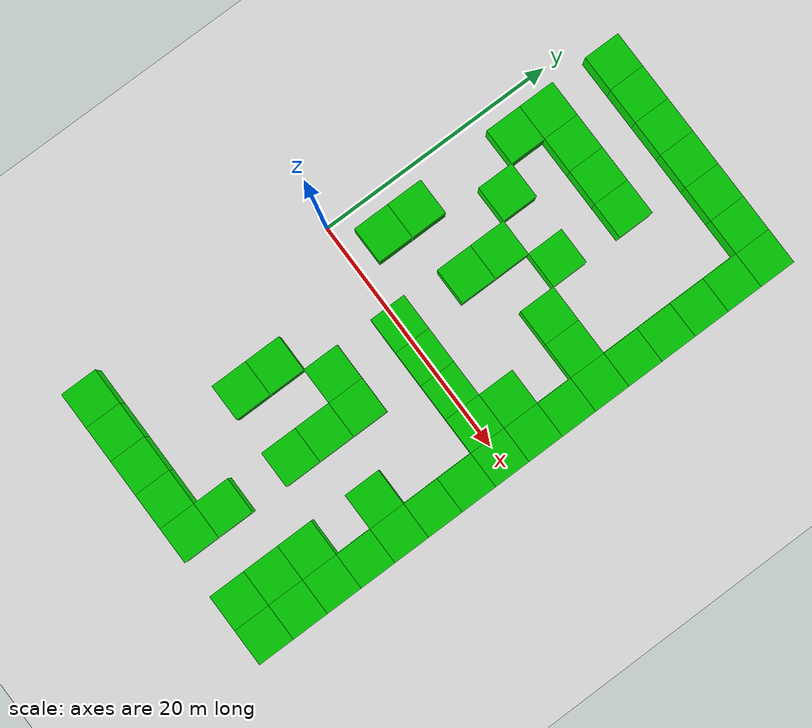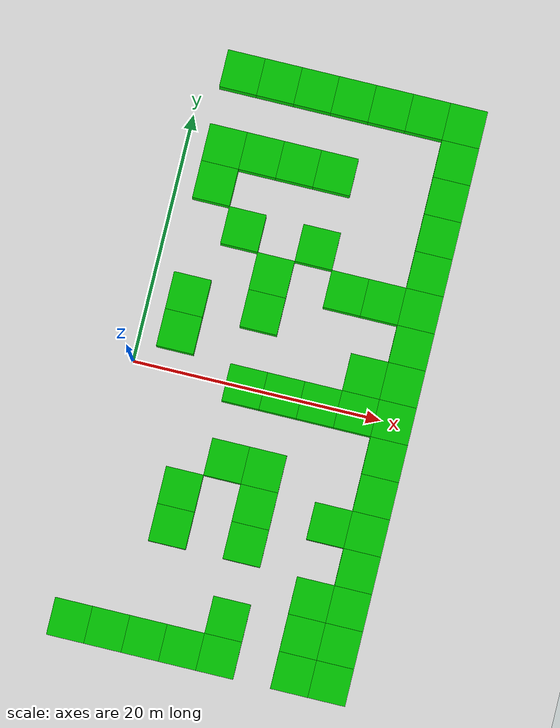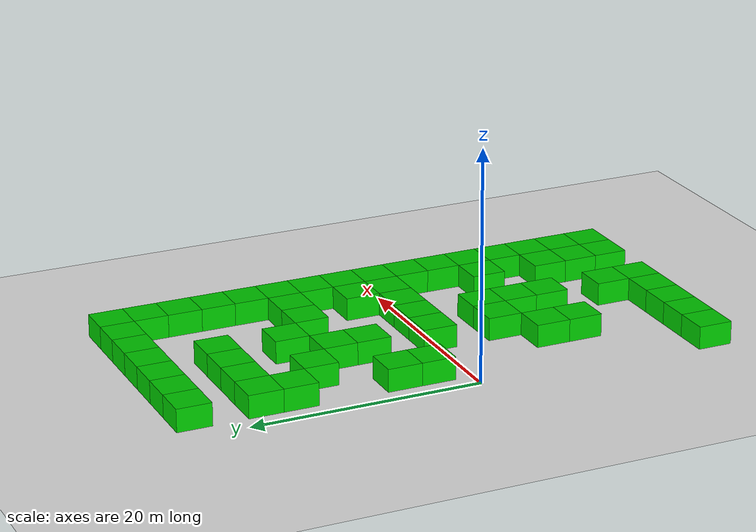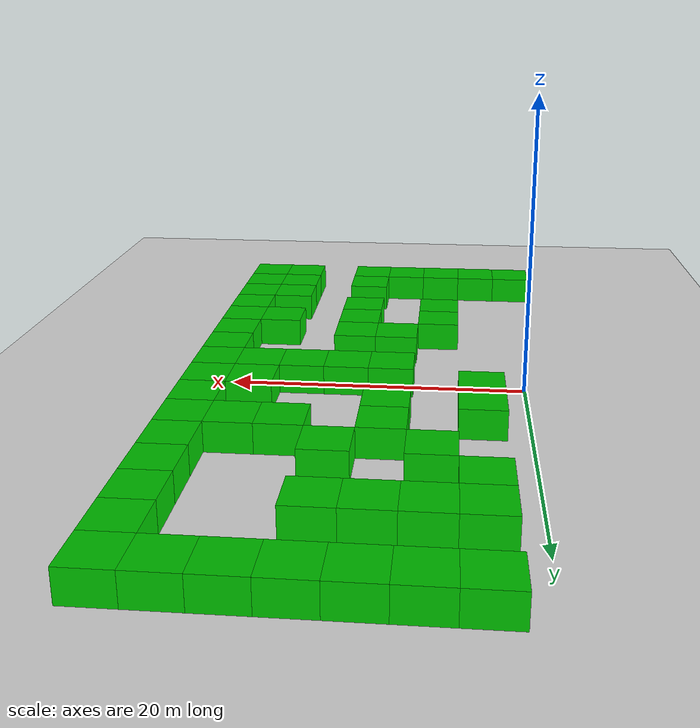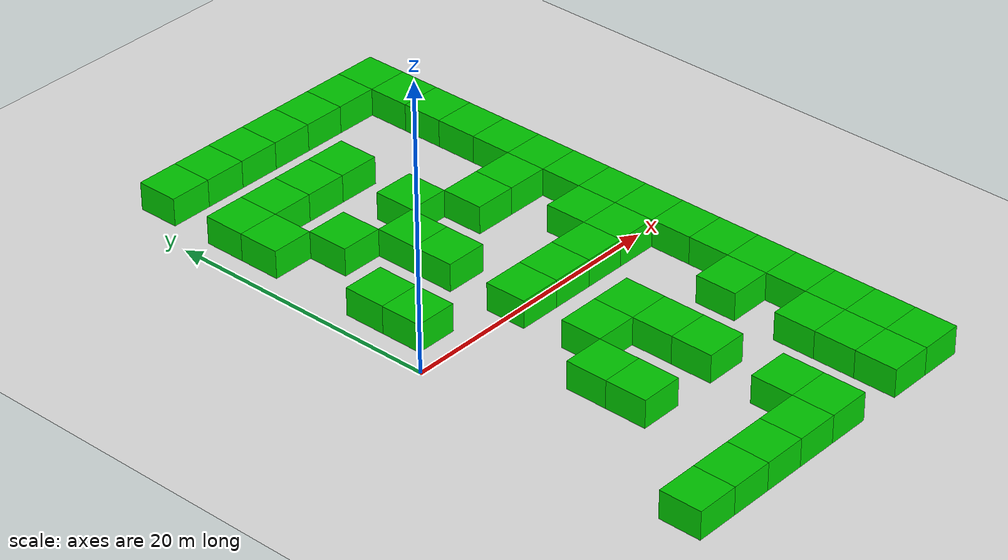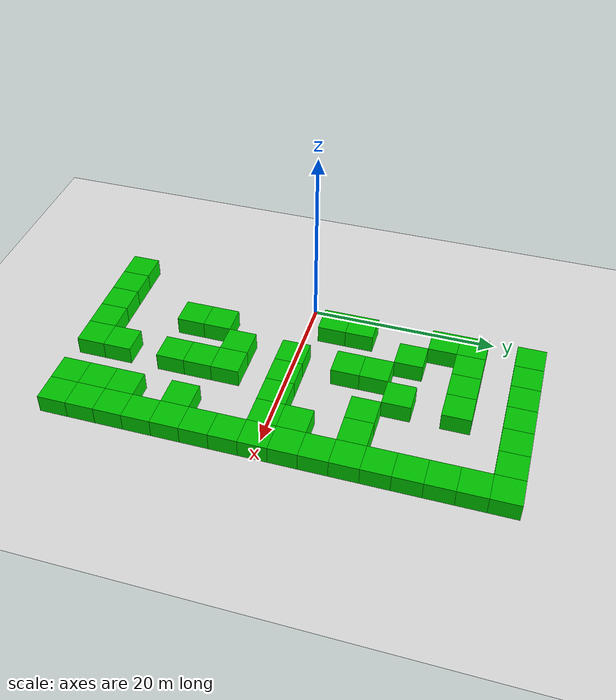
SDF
<sdf version="1.6">
 <world name="generated_maze">
  <model name="ground_plane">
   <static>true</static>
   <link name="link">
    <collision name="collision">
     <geometry><plane><normal>0 0 1</normal><size>300 300</size></plane></geometry>
    </collision>
    <visual name="visual">
     <geometry><plane><normal>0 0 1</normal><size>300 300</size></plane></geometry>
     <material>
      <ambient>0.9 0.9 0.9 1</ambient>
      <diffuse>0.9 0.9 0.9 1</diffuse>
      <specular>0.3 0.3 0.3 1</specular>
     </material>
    </visual>
   </link>
  </model>
  <model name="wall_0_9">
   <static>true</static>
   <pose>3.0 24.0 1.00 0 0 0</pose>
   <link name="link">
    <collision name="collision"><geometry><box><size>3.0 3.0 2.0</size></box></geometry></collision>
    <visual name="visual">
     <geometry><box><size>3.0 3.0 2.0</size></box></geometry>
     <material>
      <ambient>0.0 0.8 0.0 1</ambient>
      <diffuse>0.0 0.8 0.0 1</diffuse>
      <specular>0.1 0.1 0.1 1</specular>
     </material>
    </visual>
   </link>
  </model>
  <model name="wall_0_10">
   <static>true</static>
   <pose>6.0 24.0 1.00 0 0 0</pose>
   <link name="link">
    <collision name="collision"><geometry><box><size>3.0 3.0 2.0</size></box></geometry></collision>
    <visual name="visual">
     <geometry><box><size>3.0 3.0 2.0</size></box></geometry>
     <material>
      <ambient>0.0 0.8 0.0 1</ambient>
      <diffuse>0.0 0.8 0.0 1</diffuse>
      <specular>0.1 0.1 0.1 1</specular>
     </material>
    </visual>
   </link>
  </model>
  <model name="wall_0_11">
   <static>true</static>
   <pose>9.0 24.0 1.00 0 0 0</pose>
   <link name="link">
    <collision name="collision"><geometry><box><size>3.0 3.0 2.0</size></box></geometry></collision>
    <visual name="visual">
     <geometry><box><size>3.0 3.0 2.0</size></box></geometry>
     <material>
      <ambient>0.0 0.8 0.0 1</ambient>
      <diffuse>0.0 0.8 0.0 1</diffuse>
      <specular>0.1 0.1 0.1 1</specular>
     </material>
    </visual>
   </link>
  </model>
  <model name="wall_0_12">
   <static>true</static>
   <pose>12.0 24.0 1.00 0 0 0</pose>
   <link name="link">
    <collision name="collision"><geometry><box><size>3.0 3.0 2.0</size></box></geometry></collision>
    <visual name="visual">
     <geometry><box><size>3.0 3.0 2.0</size></box></geometry>
     <material>
      <ambient>0.0 0.8 0.0 1</ambient>
      <diffuse>0.0 0.8 0.0 1</diffuse>
      <specular>0.1 0.1 0.1 1</specular>
     </material>
    </visual>
   </link>
  </model>
  <model name="wall_0_13">
   <static>true</static>
   <pose>15.0 24.0 1.00 0 0 0</pose>
   <link name="link">
    <collision name="collision"><geometry><box><size>3.0 3.0 2.0</size></box></geometry></collision>
    <visual name="visual">
     <geometry><box><size>3.0 3.0 2.0</size></box></geometry>
     <material>
      <ambient>0.0 0.8 0.0 1</ambient>
      <diffuse>0.0 0.8 0.0 1</diffuse>
      <specular>0.1 0.1 0.1 1</specular>
     </material>
    </visual>
   </link>
  </model>
  <model name="wall_0_14">
   <static>true</static>
   <pose>18.0 24.0 1.00 0 0 0</pose>
   <link name="link">
    <collision name="collision"><geometry><box><size>3.0 3.0 2.0</size></box></geometry></collision>
    <visual name="visual">
     <geometry><box><size>3.0 3.0 2.0</size></box></geometry>
     <material>
      <ambient>0.0 0.8 0.0 1</ambient>
      <diffuse>0.0 0.8 0.0 1</diffuse>
      <specular>0.1 0.1 0.1 1</specular>
     </material>
    </visual>
   </link>
  </model>
  <model name="wall_0_15">
   <static>true</static>
   <pose>21.0 24.0 1.00 0 0 0</pose>
   <link name="link">
    <collision name="collision"><geometry><box><size>3.0 3.0 2.0</size></box></geometry></collision>
    <visual name="visual">
     <geometry><box><size>3.0 3.0 2.0</size></box></geometry>
     <material>
      <ambient>0.0 0.8 0.0 1</ambient>
      <diffuse>0.0 0.8 0.0 1</diffuse>
      <specular>0.1 0.1 0.1 1</specular>
     </material>
    </visual>
   </link>
  </model>
  <model name="wall_1_15">
   <static>true</static>
   <pose>21.0 21.0 1.00 0 0 0</pose>
   <link name="link">
    <collision name="collision"><geometry><box><size>3.0 3.0 2.0</size></box></geometry></collision>
    <visual name="visual">
     <geometry><box><size>3.0 3.0 2.0</size></box></geometry>
     <material>
      <ambient>0.0 0.8 0.0 1</ambient>
      <diffuse>0.0 0.8 0.0 1</diffuse>
      <specular>0.1 0.1 0.1 1</specular>
     </material>
    </visual>
   </link>
  </model>
  <model name="wall_2_9">
   <static>true</static>
   <pose>3.0 18.0 1.00 0 0 0</pose>
   <link name="link">
    <collision name="collision"><geometry><box><size>3.0 3.0 2.0</size></box></geometry></collision>
    <visual name="visual">
     <geometry><box><size>3.0 3.0 2.0</size></box></geometry>
     <material>
      <ambient>0.0 0.8 0.0 1</ambient>
      <diffuse>0.0 0.8 0.0 1</diffuse>
      <specular>0.1 0.1 0.1 1</specular>
     </material>
    </visual>
   </link>
  </model>
  <model name="wall_2_10">
   <static>true</static>
   <pose>6.0 18.0 1.00 0 0 0</pose>
   <link name="link">
    <collision name="collision"><geometry><box><size>3.0 3.0 2.0</size></box></geometry></collision>
    <visual name="visual">
     <geometry><box><size>3.0 3.0 2.0</size></box></geometry>
     <material>
      <ambient>0.0 0.8 0.0 1</ambient>
      <diffuse>0.0 0.8 0.0 1</diffuse>
      <specular>0.1 0.1 0.1 1</specular>
     </material>
    </visual>
   </link>
  </model>
  <model name="wall_2_11">
   <static>true</static>
   <pose>9.0 18.0 1.00 0 0 0</pose>
   <link name="link">
    <collision name="collision"><geometry><box><size>3.0 3.0 2.0</size></box></geometry></collision>
    <visual name="visual">
     <geometry><box><size>3.0 3.0 2.0</size></box></geometry>
     <material>
      <ambient>0.0 0.8 0.0 1</ambient>
      <diffuse>0.0 0.8 0.0 1</diffuse>
      <specular>0.1 0.1 0.1 1</specular>
     </material>
    </visual>
   </link>
  </model>
  <model name="wall_2_12">
   <static>true</static>
   <pose>12.0 18.0 1.00 0 0 0</pose>
   <link name="link">
    <collision name="collision"><geometry><box><size>3.0 3.0 2.0</size></box></geometry></collision>
    <visual name="visual">
     <geometry><box><size>3.0 3.0 2.0</size></box></geometry>
     <material>
      <ambient>0.0 0.8 0.0 1</ambient>
      <diffuse>0.0 0.8 0.0 1</diffuse>
      <specular>0.1 0.1 0.1 1</specular>
     </material>
    </visual>
   </link>
  </model>
  <model name="wall_2_15">
   <static>true</static>
   <pose>21.0 18.0 1.00 0 0 0</pose>
   <link name="link">
    <collision name="collision"><geometry><box><size>3.0 3.0 2.0</size></box></geometry></collision>
    <visual name="visual">
     <geometry><box><size>3.0 3.0 2.0</size></box></geometry>
     <material>
      <ambient>0.0 0.8 0.0 1</ambient>
      <diffuse>0.0 0.8 0.0 1</diffuse>
      <specular>0.1 0.1 0.1 1</specular>
     </material>
    </visual>
   </link>
  </model>
  <model name="wall_3_9">
   <static>true</static>
   <pose>3.0 15.0 1.00 0 0 0</pose>
   <link name="link">
    <collision name="collision"><geometry><box><size>3.0 3.0 2.0</size></box></geometry></collision>
    <visual name="visual">
     <geometry><box><size>3.0 3.0 2.0</size></box></geometry>
     <material>
      <ambient>0.0 0.8 0.0 1</ambient>
      <diffuse>0.0 0.8 0.0 1</diffuse>
      <specular>0.1 0.1 0.1 1</specular>
     </material>
    </visual>
   </link>
  </model>
  <model name="wall_3_15">
   <static>true</static>
   <pose>21.0 15.0 1.00 0 0 0</pose>
   <link name="link">
    <collision name="collision"><geometry><box><size>3.0 3.0 2.0</size></box></geometry></collision>
    <visual name="visual">
     <geometry><box><size>3.0 3.0 2.0</size></box></geometry>
     <material>
      <ambient>0.0 0.8 0.0 1</ambient>
      <diffuse>0.0 0.8 0.0 1</diffuse>
      <specular>0.1 0.1 0.1 1</specular>
     </material>
    </visual>
   </link>
  </model>
  <model name="wall_4_10">
   <static>true</static>
   <pose>6.0 12.0 1.00 0 0 0</pose>
   <link name="link">
    <collision name="collision"><geometry><box><size>3.0 3.0 2.0</size></box></geometry></collision>
    <visual name="visual">
     <geometry><box><size>3.0 3.0 2.0</size></box></geometry>
     <material>
      <ambient>0.0 0.8 0.0 1</ambient>
      <diffuse>0.0 0.8 0.0 1</diffuse>
      <specular>0.1 0.1 0.1 1</specular>
     </material>
    </visual>
   </link>
  </model>
  <model name="wall_4_12">
   <static>true</static>
   <pose>12.0 12.0 1.00 0 0 0</pose>
   <link name="link">
    <collision name="collision"><geometry><box><size>3.0 3.0 2.0</size></box></geometry></collision>
    <visual name="visual">
     <geometry><box><size>3.0 3.0 2.0</size></box></geometry>
     <material>
      <ambient>0.0 0.8 0.0 1</ambient>
      <diffuse>0.0 0.8 0.0 1</diffuse>
      <specular>0.1 0.1 0.1 1</specular>
     </material>
    </visual>
   </link>
  </model>
  <model name="wall_4_15">
   <static>true</static>
   <pose>21.0 12.0 1.00 0 0 0</pose>
   <link name="link">
    <collision name="collision"><geometry><box><size>3.0 3.0 2.0</size></box></geometry></collision>
    <visual name="visual">
     <geometry><box><size>3.0 3.0 2.0</size></box></geometry>
     <material>
      <ambient>0.0 0.8 0.0 1</ambient>
      <diffuse>0.0 0.8 0.0 1</diffuse>
      <specular>0.1 0.1 0.1 1</specular>
     </material>
    </visual>
   </link>
  </model>
  <model name="wall_5_11">
   <static>true</static>
   <pose>9.0 9.0 1.00 0 0 0</pose>
   <link name="link">
    <collision name="collision"><geometry><box><size>3.0 3.0 2.0</size></box></geometry></collision>
    <visual name="visual">
     <geometry><box><size>3.0 3.0 2.0</size></box></geometry>
     <material>
      <ambient>0.0 0.8 0.0 1</ambient>
      <diffuse>0.0 0.8 0.0 1</diffuse>
      <specular>0.1 0.1 0.1 1</specular>
     </material>
    </visual>
   </link>
  </model>
  <model name="wall_5_13">
   <static>true</static>
   <pose>15.0 9.0 1.00 0 0 0</pose>
   <link name="link">
    <collision name="collision"><geometry><box><size>3.0 3.0 2.0</size></box></geometry></collision>
    <visual name="visual">
     <geometry><box><size>3.0 3.0 2.0</size></box></geometry>
     <material>
      <ambient>0.0 0.8 0.0 1</ambient>
      <diffuse>0.0 0.8 0.0 1</diffuse>
      <specular>0.1 0.1 0.1 1</specular>
     </material>
    </visual>
   </link>
  </model>
  <model name="wall_5_14">
   <static>true</static>
   <pose>18.0 9.0 1.00 0 0 0</pose>
   <link name="link">
    <collision name="collision"><geometry><box><size>3.0 3.0 2.0</size></box></geometry></collision>
    <visual name="visual">
     <geometry><box><size>3.0 3.0 2.0</size></box></geometry>
     <material>
      <ambient>0.0 0.8 0.0 1</ambient>
      <diffuse>0.0 0.8 0.0 1</diffuse>
      <specular>0.1 0.1 0.1 1</specular>
     </material>
    </visual>
   </link>
  </model>
  <model name="wall_5_15">
   <static>true</static>
   <pose>21.0 9.0 1.00 0 0 0</pose>
   <link name="link">
    <collision name="collision"><geometry><box><size>3.0 3.0 2.0</size></box></geometry></collision>
    <visual name="visual">
     <geometry><box><size>3.0 3.0 2.0</size></box></geometry>
     <material>
      <ambient>0.0 0.8 0.0 1</ambient>
      <diffuse>0.0 0.8 0.0 1</diffuse>
      <specular>0.1 0.1 0.1 1</specular>
     </material>
    </visual>
   </link>
  </model>
  <model name="wall_6_9">
   <static>true</static>
   <pose>3.0 6.0 1.00 0 0 0</pose>
   <link name="link">
    <collision name="collision"><geometry><box><size>3.0 3.0 2.0</size></box></geometry></collision>
    <visual name="visual">
     <geometry><box><size>3.0 3.0 2.0</size></box></geometry>
     <material>
      <ambient>0.0 0.8 0.0 1</ambient>
      <diffuse>0.0 0.8 0.0 1</diffuse>
      <specular>0.1 0.1 0.1 1</specular>
     </material>
    </visual>
   </link>
  </model>
  <model name="wall_6_11">
   <static>true</static>
   <pose>9.0 6.0 1.00 0 0 0</pose>
   <link name="link">
    <collision name="collision"><geometry><box><size>3.0 3.0 2.0</size></box></geometry></collision>
    <visual name="visual">
     <geometry><box><size>3.0 3.0 2.0</size></box></geometry>
     <material>
      <ambient>0.0 0.8 0.0 1</ambient>
      <diffuse>0.0 0.8 0.0 1</diffuse>
      <specular>0.1 0.1 0.1 1</specular>
     </material>
    </visual>
   </link>
  </model>
  <model name="wall_6_15">
   <static>true</static>
   <pose>21.0 6.0 1.00 0 0 0</pose>
   <link name="link">
    <collision name="collision"><geometry><box><size>3.0 3.0 2.0</size></box></geometry></collision>
    <visual name="visual">
     <geometry><box><size>3.0 3.0 2.0</size></box></geometry>
     <material>
      <ambient>0.0 0.8 0.0 1</ambient>
      <diffuse>0.0 0.8 0.0 1</diffuse>
      <specular>0.1 0.1 0.1 1</specular>
     </material>
    </visual>
   </link>
  </model>
  <model name="wall_7_9">
   <static>true</static>
   <pose>3.0 3.0 1.00 0 0 0</pose>
   <link name="link">
    <collision name="collision"><geometry><box><size>3.0 3.0 2.0</size></box></geometry></collision>
    <visual name="visual">
     <geometry><box><size>3.0 3.0 2.0</size></box></geometry>
     <material>
      <ambient>0.0 0.8 0.0 1</ambient>
      <diffuse>0.0 0.8 0.0 1</diffuse>
      <specular>0.1 0.1 0.1 1</specular>
     </material>
    </visual>
   </link>
  </model>
  <model name="wall_7_14">
   <static>true</static>
   <pose>18.0 3.0 1.00 0 0 0</pose>
   <link name="link">
    <collision name="collision"><geometry><box><size>3.0 3.0 2.0</size></box></geometry></collision>
    <visual name="visual">
     <geometry><box><size>3.0 3.0 2.0</size></box></geometry>
     <material>
      <ambient>0.0 0.8 0.0 1</ambient>
      <diffuse>0.0 0.8 0.0 1</diffuse>
      <specular>0.1 0.1 0.1 1</specular>
     </material>
    </visual>
   </link>
  </model>
  <model name="wall_7_15">
   <static>true</static>
   <pose>21.0 3.0 1.00 0 0 0</pose>
   <link name="link">
    <collision name="collision"><geometry><box><size>3.0 3.0 2.0</size></box></geometry></collision>
    <visual name="visual">
     <geometry><box><size>3.0 3.0 2.0</size></box></geometry>
     <material>
      <ambient>0.0 0.8 0.0 1</ambient>
      <diffuse>0.0 0.8 0.0 1</diffuse>
      <specular>0.1 0.1 0.1 1</specular>
     </material>
    </visual>
   </link>
  </model>
  <model name="wall_8_11">
   <static>true</static>
   <pose>9.0 0.0 1.00 0 0 0</pose>
   <link name="link">
    <collision name="collision"><geometry><box><size>3.0 3.0 2.0</size></box></geometry></collision>
    <visual name="visual">
     <geometry><box><size>3.0 3.0 2.0</size></box></geometry>
     <material>
      <ambient>0.0 0.8 0.0 1</ambient>
      <diffuse>0.0 0.8 0.0 1</diffuse>
      <specular>0.1 0.1 0.1 1</specular>
     </material>
    </visual>
   </link>
  </model>
  <model name="wall_8_12">
   <static>true</static>
   <pose>12.0 0.0 1.00 0 0 0</pose>
   <link name="link">
    <collision name="collision"><geometry><box><size>3.0 3.0 2.0</size></box></geometry></collision>
    <visual name="visual">
     <geometry><box><size>3.0 3.0 2.0</size></box></geometry>
     <material>
      <ambient>0.0 0.8 0.0 1</ambient>
      <diffuse>0.0 0.8 0.0 1</diffuse>
      <specular>0.1 0.1 0.1 1</specular>
     </material>
    </visual>
   </link>
  </model>
  <model name="wall_8_13">
   <static>true</static>
   <pose>15.0 0.0 1.00 0 0 0</pose>
   <link name="link">
    <collision name="collision"><geometry><box><size>3.0 3.0 2.0</size></box></geometry></collision>
    <visual name="visual">
     <geometry><box><size>3.0 3.0 2.0</size></box></geometry>
     <material>
      <ambient>0.0 0.8 0.0 1</ambient>
      <diffuse>0.0 0.8 0.0 1</diffuse>
      <specular>0.1 0.1 0.1 1</specular>
     </material>
    </visual>
   </link>
  </model>
  <model name="wall_8_14">
   <static>true</static>
   <pose>18.0 0.0 1.00 0 0 0</pose>
   <link name="link">
    <collision name="collision"><geometry><box><size>3.0 3.0 2.0</size></box></geometry></collision>
    <visual name="visual">
     <geometry><box><size>3.0 3.0 2.0</size></box></geometry>
     <material>
      <ambient>0.0 0.8 0.0 1</ambient>
      <diffuse>0.0 0.8 0.0 1</diffuse>
      <specular>0.1 0.1 0.1 1</specular>
     </material>
    </visual>
   </link>
  </model>
  <model name="wall_8_15">
   <static>true</static>
   <pose>21.0 0.0 1.00 0 0 0</pose>
   <link name="link">
    <collision name="collision"><geometry><box><size>3.0 3.0 2.0</size></box></geometry></collision>
    <visual name="visual">
     <geometry><box><size>3.0 3.0 2.0</size></box></geometry>
     <material>
      <ambient>0.0 0.8 0.0 1</ambient>
      <diffuse>0.0 0.8 0.0 1</diffuse>
      <specular>0.1 0.1 0.1 1</specular>
     </material>
    </visual>
   </link>
  </model>
  <model name="wall_9_15">
   <static>true</static>
   <pose>21.0 -3.0 1.00 0 0 0</pose>
   <link name="link">
    <collision name="collision"><geometry><box><size>3.0 3.0 2.0</size></box></geometry></collision>
    <visual name="visual">
     <geometry><box><size>3.0 3.0 2.0</size></box></geometry>
     <material>
      <ambient>0.0 0.8 0.0 1</ambient>
      <diffuse>0.0 0.8 0.0 1</diffuse>
      <specular>0.1 0.1 0.1 1</specular>
     </material>
    </visual>
   </link>
  </model>
  <model name="wall_10_11">
   <static>true</static>
   <pose>9.0 -6.0 1.00 0 0 0</pose>
   <link name="link">
    <collision name="collision"><geometry><box><size>3.0 3.0 2.0</size></box></geometry></collision>
    <visual name="visual">
     <geometry><box><size>3.0 3.0 2.0</size></box></geometry>
     <material>
      <ambient>0.0 0.8 0.0 1</ambient>
      <diffuse>0.0 0.8 0.0 1</diffuse>
      <specular>0.1 0.1 0.1 1</specular>
     </material>
    </visual>
   </link>
  </model>
  <model name="wall_10_12">
   <static>true</static>
   <pose>12.0 -6.0 1.00 0 0 0</pose>
   <link name="link">
    <collision name="collision"><geometry><box><size>3.0 3.0 2.0</size></box></geometry></collision>
    <visual name="visual">
     <geometry><box><size>3.0 3.0 2.0</size></box></geometry>
     <material>
      <ambient>0.0 0.8 0.0 1</ambient>
      <diffuse>0.0 0.8 0.0 1</diffuse>
      <specular>0.1 0.1 0.1 1</specular>
     </material>
    </visual>
   </link>
  </model>
  <model name="wall_10_15">
   <static>true</static>
   <pose>21.0 -6.0 1.00 0 0 0</pose>
   <link name="link">
    <collision name="collision"><geometry><box><size>3.0 3.0 2.0</size></box></geometry></collision>
    <visual name="visual">
     <geometry><box><size>3.0 3.0 2.0</size></box></geometry>
     <material>
      <ambient>0.0 0.8 0.0 1</ambient>
      <diffuse>0.0 0.8 0.0 1</diffuse>
      <specular>0.1 0.1 0.1 1</specular>
     </material>
    </visual>
   </link>
  </model>
  <model name="wall_11_10">
   <static>true</static>
   <pose>6.0 -9.0 1.00 0 0 0</pose>
   <link name="link">
    <collision name="collision"><geometry><box><size>3.0 3.0 2.0</size></box></geometry></collision>
    <visual name="visual">
     <geometry><box><size>3.0 3.0 2.0</size></box></geometry>
     <material>
      <ambient>0.0 0.8 0.0 1</ambient>
      <diffuse>0.0 0.8 0.0 1</diffuse>
      <specular>0.1 0.1 0.1 1</specular>
     </material>
    </visual>
   </link>
  </model>
  <model name="wall_11_12">
   <static>true</static>
   <pose>12.0 -9.0 1.00 0 0 0</pose>
   <link name="link">
    <collision name="collision"><geometry><box><size>3.0 3.0 2.0</size></box></geometry></collision>
    <visual name="visual">
     <geometry><box><size>3.0 3.0 2.0</size></box></geometry>
     <material>
      <ambient>0.0 0.8 0.0 1</ambient>
      <diffuse>0.0 0.8 0.0 1</diffuse>
      <specular>0.1 0.1 0.1 1</specular>
     </material>
    </visual>
   </link>
  </model>
  <model name="wall_11_14">
   <static>true</static>
   <pose>18.0 -9.0 1.00 0 0 0</pose>
   <link name="link">
    <collision name="collision"><geometry><box><size>3.0 3.0 2.0</size></box></geometry></collision>
    <visual name="visual">
     <geometry><box><size>3.0 3.0 2.0</size></box></geometry>
     <material>
      <ambient>0.0 0.8 0.0 1</ambient>
      <diffuse>0.0 0.8 0.0 1</diffuse>
      <specular>0.1 0.1 0.1 1</specular>
     </material>
    </visual>
   </link>
  </model>
  <model name="wall_11_15">
   <static>true</static>
   <pose>21.0 -9.0 1.00 0 0 0</pose>
   <link name="link">
    <collision name="collision"><geometry><box><size>3.0 3.0 2.0</size></box></geometry></collision>
    <visual name="visual">
     <geometry><box><size>3.0 3.0 2.0</size></box></geometry>
     <material>
      <ambient>0.0 0.8 0.0 1</ambient>
      <diffuse>0.0 0.8 0.0 1</diffuse>
      <specular>0.1 0.1 0.1 1</specular>
     </material>
    </visual>
   </link>
  </model>
  <model name="wall_12_10">
   <static>true</static>
   <pose>6.0 -12.0 1.00 0 0 0</pose>
   <link name="link">
    <collision name="collision"><geometry><box><size>3.0 3.0 2.0</size></box></geometry></collision>
    <visual name="visual">
     <geometry><box><size>3.0 3.0 2.0</size></box></geometry>
     <material>
      <ambient>0.0 0.8 0.0 1</ambient>
      <diffuse>0.0 0.8 0.0 1</diffuse>
      <specular>0.1 0.1 0.1 1</specular>
     </material>
    </visual>
   </link>
  </model>
  <model name="wall_12_12">
   <static>true</static>
   <pose>12.0 -12.0 1.00 0 0 0</pose>
   <link name="link">
    <collision name="collision"><geometry><box><size>3.0 3.0 2.0</size></box></geometry></collision>
    <visual name="visual">
     <geometry><box><size>3.0 3.0 2.0</size></box></geometry>
     <material>
      <ambient>0.0 0.8 0.0 1</ambient>
      <diffuse>0.0 0.8 0.0 1</diffuse>
      <specular>0.1 0.1 0.1 1</specular>
     </material>
    </visual>
   </link>
  </model>
  <model name="wall_12_15">
   <static>true</static>
   <pose>21.0 -12.0 1.00 0 0 0</pose>
   <link name="link">
    <collision name="collision"><geometry><box><size>3.0 3.0 2.0</size></box></geometry></collision>
    <visual name="visual">
     <geometry><box><size>3.0 3.0 2.0</size></box></geometry>
     <material>
      <ambient>0.0 0.8 0.0 1</ambient>
      <diffuse>0.0 0.8 0.0 1</diffuse>
      <specular>0.1 0.1 0.1 1</specular>
     </material>
    </visual>
   </link>
  </model>
  <model name="wall_13_14">
   <static>true</static>
   <pose>18.0 -15.0 1.00 0 0 0</pose>
   <link name="link">
    <collision name="collision"><geometry><box><size>3.0 3.0 2.0</size></box></geometry></collision>
    <visual name="visual">
     <geometry><box><size>3.0 3.0 2.0</size></box></geometry>
     <material>
      <ambient>0.0 0.8 0.0 1</ambient>
      <diffuse>0.0 0.8 0.0 1</diffuse>
      <specular>0.1 0.1 0.1 1</specular>
     </material>
    </visual>
   </link>
  </model>
  <model name="wall_13_15">
   <static>true</static>
   <pose>21.0 -15.0 1.00 0 0 0</pose>
   <link name="link">
    <collision name="collision"><geometry><box><size>3.0 3.0 2.0</size></box></geometry></collision>
    <visual name="visual">
     <geometry><box><size>3.0 3.0 2.0</size></box></geometry>
     <material>
      <ambient>0.0 0.8 0.0 1</ambient>
      <diffuse>0.0 0.8 0.0 1</diffuse>
      <specular>0.1 0.1 0.1 1</specular>
     </material>
    </visual>
   </link>
  </model>
  <model name="wall_14_12">
   <static>true</static>
   <pose>12.0 -18.0 1.00 0 0 0</pose>
   <link name="link">
    <collision name="collision"><geometry><box><size>3.0 3.0 2.0</size></box></geometry></collision>
    <visual name="visual">
     <geometry><box><size>3.0 3.0 2.0</size></box></geometry>
     <material>
      <ambient>0.0 0.8 0.0 1</ambient>
      <diffuse>0.0 0.8 0.0 1</diffuse>
      <specular>0.1 0.1 0.1 1</specular>
     </material>
    </visual>
   </link>
  </model>
  <model name="wall_14_14">
   <static>true</static>
   <pose>18.0 -18.0 1.00 0 0 0</pose>
   <link name="link">
    <collision name="collision"><geometry><box><size>3.0 3.0 2.0</size></box></geometry></collision>
    <visual name="visual">
     <geometry><box><size>3.0 3.0 2.0</size></box></geometry>
     <material>
      <ambient>0.0 0.8 0.0 1</ambient>
      <diffuse>0.0 0.8 0.0 1</diffuse>
      <specular>0.1 0.1 0.1 1</specular>
     </material>
    </visual>
   </link>
  </model>
  <model name="wall_14_15">
   <static>true</static>
   <pose>21.0 -18.0 1.00 0 0 0</pose>
   <link name="link">
    <collision name="collision"><geometry><box><size>3.0 3.0 2.0</size></box></geometry></collision>
    <visual name="visual">
     <geometry><box><size>3.0 3.0 2.0</size></box></geometry>
     <material>
      <ambient>0.0 0.8 0.0 1</ambient>
      <diffuse>0.0 0.8 0.0 1</diffuse>
      <specular>0.1 0.1 0.1 1</specular>
     </material>
    </visual>
   </link>
  </model>
  <model name="wall_15_8">
   <static>true</static>
   <pose>0.0 -21.0 1.00 0 0 0</pose>
   <link name="link">
    <collision name="collision"><geometry><box><size>3.0 3.0 2.0</size></box></geometry></collision>
    <visual name="visual">
     <geometry><box><size>3.0 3.0 2.0</size></box></geometry>
     <material>
      <ambient>0.0 0.8 0.0 1</ambient>
      <diffuse>0.0 0.8 0.0 1</diffuse>
      <specular>0.1 0.1 0.1 1</specular>
     </material>
    </visual>
   </link>
  </model>
  <model name="wall_15_9">
   <static>true</static>
   <pose>3.0 -21.0 1.00 0 0 0</pose>
   <link name="link">
    <collision name="collision"><geometry><box><size>3.0 3.0 2.0</size></box></geometry></collision>
    <visual name="visual">
     <geometry><box><size>3.0 3.0 2.0</size></box></geometry>
     <material>
      <ambient>0.0 0.8 0.0 1</ambient>
      <diffuse>0.0 0.8 0.0 1</diffuse>
      <specular>0.1 0.1 0.1 1</specular>
     </material>
    </visual>
   </link>
  </model>
  <model name="wall_15_10">
   <static>true</static>
   <pose>6.0 -21.0 1.00 0 0 0</pose>
   <link name="link">
    <collision name="collision"><geometry><box><size>3.0 3.0 2.0</size></box></geometry></collision>
    <visual name="visual">
     <geometry><box><size>3.0 3.0 2.0</size></box></geometry>
     <material>
      <ambient>0.0 0.8 0.0 1</ambient>
      <diffuse>0.0 0.8 0.0 1</diffuse>
      <specular>0.1 0.1 0.1 1</specular>
     </material>
    </visual>
   </link>
  </model>
  <model name="wall_15_11">
   <static>true</static>
   <pose>9.0 -21.0 1.00 0 0 0</pose>
   <link name="link">
    <collision name="collision"><geometry><box><size>3.0 3.0 2.0</size></box></geometry></collision>
    <visual name="visual">
     <geometry><box><size>3.0 3.0 2.0</size></box></geometry>
     <material>
      <ambient>0.0 0.8 0.0 1</ambient>
      <diffuse>0.0 0.8 0.0 1</diffuse>
      <specular>0.1 0.1 0.1 1</specular>
     </material>
    </visual>
   </link>
  </model>
  <model name="wall_15_12">
   <static>true</static>
   <pose>12.0 -21.0 1.00 0 0 0</pose>
   <link name="link">
    <collision name="collision"><geometry><box><size>3.0 3.0 2.0</size></box></geometry></collision>
    <visual name="visual">
     <geometry><box><size>3.0 3.0 2.0</size></box></geometry>
     <material>
      <ambient>0.0 0.8 0.0 1</ambient>
      <diffuse>0.0 0.8 0.0 1</diffuse>
      <specular>0.1 0.1 0.1 1</specular>
     </material>
    </visual>
   </link>
  </model>
  <model name="wall_15_14">
   <static>true</static>
   <pose>18.0 -21.0 1.00 0 0 0</pose>
   <link name="link">
    <collision name="collision"><geometry><box><size>3.0 3.0 2.0</size></box></geometry></collision>
    <visual name="visual">
     <geometry><box><size>3.0 3.0 2.0</size></box></geometry>
     <material>
      <ambient>0.0 0.8 0.0 1</ambient>
      <diffuse>0.0 0.8 0.0 1</diffuse>
      <specular>0.1 0.1 0.1 1</specular>
     </material>
    </visual>
   </link>
  </model>
  <model name="wall_15_15">
   <static>true</static>
   <pose>21.0 -21.0 1.00 0 0 0</pose>
   <link name="link">
    <collision name="collision"><geometry><box><size>3.0 3.0 2.0</size></box></geometry></collision>
    <visual name="visual">
     <geometry><box><size>3.0 3.0 2.0</size></box></geometry>
     <material>
      <ambient>0.0 0.8 0.0 1</ambient>
      <diffuse>0.0 0.8 0.0 1</diffuse>
      <specular>0.1 0.1 0.1 1</specular>
     </material>
    </visual>
   </link>
  </model>
 </world>
</sdf>
